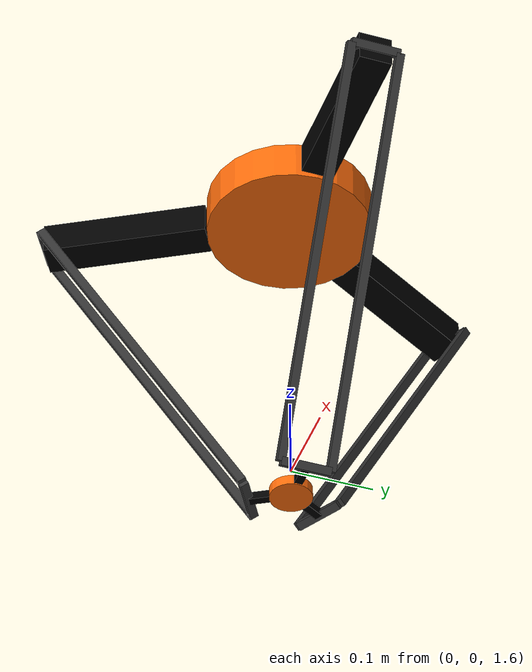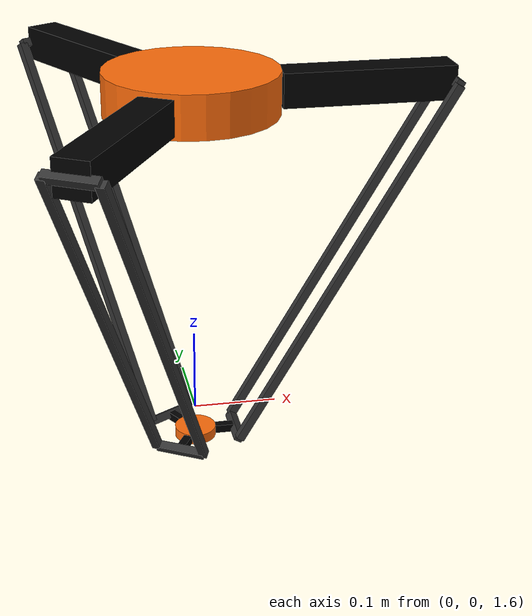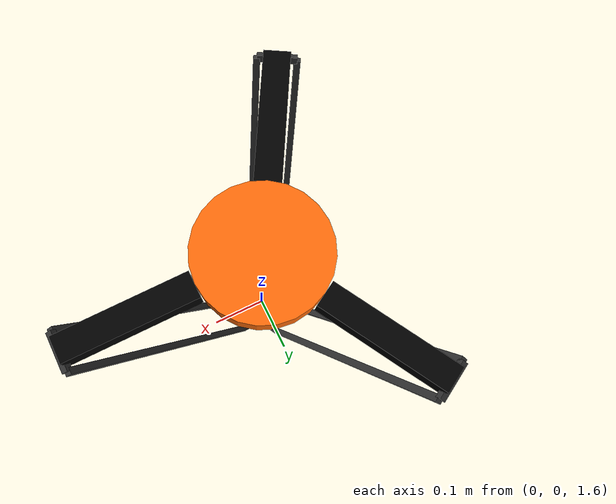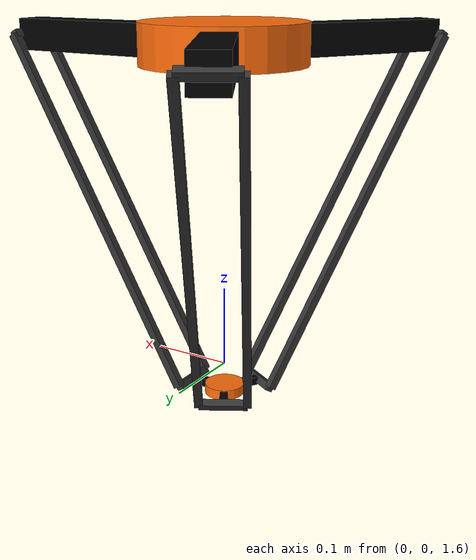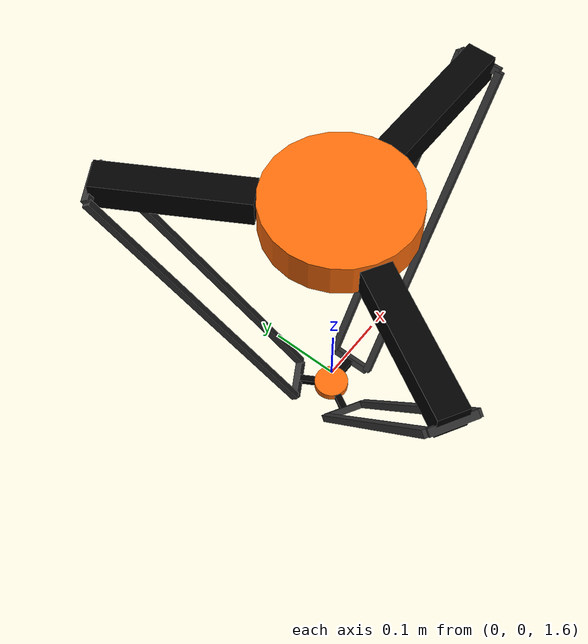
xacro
<?xml version="1.0"?>
<!-- Revolute-Revolute Manipulator -->
<robot name="delta_test" xmlns:xacro="http://www.ros.org/wiki/xacro">

  <!-- Constants for robot dimensions -->
  <xacro:property name="PI" value="3.1415926535897931"/>
  <xacro:property name="width" value="0.05" /> <!-- Square dimensions (widthxwidth) of beams -->
  <xacro:property name="height1" value="0.05" /> <!-- base and end links -->

  <xacro:include filename="$(find simple_delta_robot_description)/urdf/delta_arm.xacro" />
  <xacro:include filename="$(find simple_delta_robot_description)/urdf/delta_robot.gazebo.xacro" />

  <!-- Used for fixing robot to Gazebo 'base_link' -->
  <link name="world"/>

  <joint name="fixed" type="fixed">
    <parent link="world"/>
    <child link="base_link"/>
    <origin xyz="0 0 2" rpy="0 0 0"/>
  </joint>

  <link name="base_link">
    <collision>
      <origin xyz="0 0 0" rpy="0 0 0"/>
      <geometry>
	      <cylinder length="${height1}" radius="${height1*2}"/>
      </geometry>
    </collision>
    <visual>
      <origin xyz="0 0 0" rpy="0 0 0"/>
      <geometry>
	      <cylinder length="${height1}" radius="${height1*2}"/>
      </geometry>
      <material name="orange">
        <color rgba="${255/255} ${108/255} ${10/255} 1.0"/>
      </material>
    </visual>
    <inertial>
      <origin xyz="0 0 0" rpy="0 0 0"/>
      <mass value="1"/>
      <inertia
	      ixx="0.1" ixy="0.0" ixz="0.0"
	      iyy="0.1" iyz="0.0"
	      izz="0.1"/>
    </inertial>
  </link>

  <xacro:delta_arm prefix="front_"/>

  <joint name="front_delta_arm_joint" type="revolute">
    <parent link="base_link"/>
    <child link="front_upper_link"/>
    <origin xyz="0.1 0 0" rpy="0 0 0"/>
    <axis xyz="0 1 0"/>
    <dynamics damping="0.7"/>
    <limit lower="${-60*PI/180}" upper="${60*PI/180}" effort="6" velocity="8"/>
  </joint>

  <xacro:delta_arm prefix="right_"/>

  <joint name="right_delta_arm_joint" type="revolute">
    <parent link="base_link"/>
    <child link="right_upper_link"/>
    <origin xyz="-0.05 -0.0866 0" rpy="0 0 ${-120*PI/180}"/>
    <axis xyz="0 1 0"/>
    <dynamics damping="0.7"/>
    <limit lower="${-60*PI/180}" upper="${60*PI/180}" effort="6" velocity="8"/>
  </joint>

  <xacro:delta_arm prefix="left_"/>

  <joint name="left_delta_arm_joint" type="revolute">
    <parent link="base_link"/>
    <child link="left_upper_link"/>
    <origin xyz="-0.05 0.0866 0" rpy="0 0 ${120*PI/180}"/>
    <axis xyz="0 1 0"/>
    <dynamics damping="0.7"/>
    <limit lower="${-60*PI/180}" upper="${60*PI/180}" effort="6" velocity="8"/>
  </joint>

  <link name="end_link">
    <collision>
      <origin xyz="0 0 0" rpy="0 0 0"/>
      <geometry>
	      <cylinder length="${height1/4}" radius="${height1/2}"/>
      </geometry>
    </collision>
    <visual>
      <origin xyz="0 0 0" rpy="0 0 0"/>
      <geometry>
	      <cylinder length="${height1/4}" radius="${height1/2}"/>
      </geometry>
      <material name="orange">
        <color rgba="${255/255} ${108/255} ${10/255} 1.0"/>
      </material>
    </visual>
    <inertial>
      <origin xyz="0 0 0" rpy="0 0 0"/>
      <mass value="0.1"/>
      <inertia
	      ixx="0.001" ixy="0.0" ixz="0.0"
	      iyy="0.001" iyz="0.0"
	      izz="0.001"/>
    </inertial>
  </link>

  <joint name="front_end_joint" type="fixed">
    <parent link="front_lower_end_link"/>
    <child link="end_link"/>
    <origin xyz="-0.05 0 0" rpy="0 0 0"/>
  </joint>

  <link name="right_end_virtual_link">
    <inertial>
      <origin xyz="0 0 0" rpy="0 0 0"/>
      <mass value="0.001"/>
      <inertia
        ixx="0.0001" ixy="0.0" ixz="0.0"
        iyy="0.0001" iyz="0.0"
        izz="0.0001"/>
    </inertial>
  </link>

  <joint name="right_end_virtual_joint" type="fixed">
    <parent link="end_link"/>
    <child link="right_end_virtual_link"/>
    <origin xyz="-0.025 -0.0433 0" rpy="0 0 ${-120*PI/180}"/>
  </joint>

  <link name="left_end_virtual_link">
    <inertial>
      <origin xyz="0 0 0" rpy="0 0 0"/>
      <mass value="0.001"/>
      <inertia
        ixx="0.0001" ixy="0.0" ixz="0.0"
        iyy="0.0001" iyz="0.0"
        izz="0.0001"/>
    </inertial>
  </link>

  <joint name="left_end_virtual_joint" type="fixed">
    <parent link="end_link"/>
    <child link="left_end_virtual_link"/>
    <origin xyz="-0.025 0.0433 0" rpy="0 0 ${120*PI/180}"/>
  </joint>

  <gazebo>
    <joint name="right_end_joint" type="fixed">
      <parent>right_lower_end_link</parent>
      <child>right_end_virtual_link</child>
      <pose> 0 0 0 0 0 0 </pose>
    </joint>
    <joint name="left_end_joint" type="fixed">
      <parent>left_lower_end_link</parent>
      <child>left_end_virtual_link</child>
      <pose> 0 0 0 0 0 0 </pose>
    </joint>
  </gazebo>
</robot>

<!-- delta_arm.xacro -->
<!-- Revolute-Revolute Manipulator -->
<robot xmlns:xacro="http://www.ros.org/wiki/xacro">

  <!-- Constants for robot dimensions -->
  <xacro:property name="PI" value="3.1415926535897931"/>
  <!-- Important angle when robot at origin point, must be calculated!!!!!! -->
  <xacro:property name="elbow_angle" value="${30*PI/180}" />
  <xacro:property name="wrist_angle" value="-${elbow_angle}" />
  <xacro:property name="mass" value="0.02" /> <!-- arbitrary value for mass -->
  <xacro:property name="upper_width" value="0.04" /> <!-- Square dimensions (widthxwidth) of beams -->
  <xacro:property name="lower_width" value="0.01" />
  <xacro:property name="upper_height" value="0.2" /> <!-- base and end links -->
  <xacro:property name="lower_height1" value="0.06" /> <!-- Upper link -->
  <xacro:property name="lower_height2" value="0.5" /> <!-- lower link -->
  <xacro:property name="lower_height3" value="0.03" /> <!-- Upper link -->

  <xacro:include filename="$(find simple_delta_robot_description)/urdf/delta_arm.gazebo.xacro" />

  <xacro:macro name="delta_arm" params="prefix">
    <link name="${prefix}upper_link">
      <collision>
        <origin xyz="${upper_height/2} 0 0" rpy="0 0 0"/>
        <geometry>
          <box size="${upper_height} ${upper_width} ${upper_width}"/>
        </geometry>
      </collision>
      <visual>
        <origin xyz="${upper_height/2} 0 0" rpy="0 0 0"/>
        <geometry>
          <box size="${upper_height} ${upper_width} ${upper_width}"/>
        </geometry>
        <material name="black">
          <color rgba="0.0 0.0 0.0 1.0"/>
        </material>
      </visual>
      <inertial>
        <origin xyz="0 0 ${upper_height/2}" rpy="0 0 0"/>
        <mass value="${mass}"/>
        <inertia
          ixx="${mass / 12.0 * (upper_width*upper_width + upper_width*upper_width)}" ixy="0.0" ixz="0.0"
          iyy="${mass / 12.0 * (upper_height*upper_height + upper_width*upper_width)}" iyz="0.0"
          izz="${mass / 12.0 * (upper_height*upper_height + upper_width*upper_width)}"/>
      </inertial>
    </link>

    <joint name="${prefix}upper_joint" type="continuous">
      <parent link="${prefix}upper_link"/>
      <child link="${prefix}lower_top_link"/>
      <origin xyz="${upper_height} 0 0" rpy="0 ${elbow_angle} 0"/>
      <axis xyz="0 1 0"/>
    </joint>

    <link name="${prefix}lower_top_link">
      <collision>
        <origin xyz="0 0 0" rpy="0 0 0"/>
        <geometry>
          <box size="${lower_width} ${lower_height1} ${lower_width}"/>
        </geometry>
      </collision>
      <visual>
        <origin xyz="0 0 0" rpy="0 0 0"/>
        <geometry>
          <box size="${lower_width} ${lower_height1} ${lower_width}"/>
        </geometry>
        <material name="grey">
          <color rgba="0.2 0.2 0.2 1.0"/>
        </material>
      </visual>
      <inertial>
        <origin xyz="0 0 0" rpy="0 0 0"/>
        <mass value="${mass}"/>
        <inertia
          ixx="${mass / 12.0 * (lower_width*lower_width + lower_height1*lower_height1)}" ixy="0.0" ixz="0.0"
          iyy="${mass / 12.0 * (lower_width*lower_width + lower_width*lower_width)}" iyz="0.0"
          izz="${mass / 12.0 * (lower_width*lower_width + lower_height1*lower_height1)}"/>
      </inertial>
    </link>

    <joint name="${prefix}lower_top_rignt_joint" type="continuous">
      <parent link="${prefix}lower_top_link"/>
      <child link="${prefix}lower_right_link"/>
      <origin xyz="0 ${-lower_height1/2} 0" rpy="0 0 0"/>
      <axis xyz="1 0 0"/>
    </joint>

    <link name="${prefix}lower_right_link">
      <collision>
        <origin xyz="0 0 ${-lower_height2/2}" rpy="0 0 0"/>
        <geometry>
          <box size="${lower_width} ${lower_width} ${lower_height2}"/>
        </geometry>
      </collision>
      <visual>
        <origin xyz="0 0 ${-lower_height2/2}" rpy="0 0 0"/>
        <geometry>
          <box size="${lower_width} ${lower_width} ${lower_height2}"/>
        </geometry>
        <material name="grey">
          <color rgba="0.2 0.2 0.2 1.0"/>
        </material>
      </visual>
      <inertial>
        <origin xyz="0 0 ${-lower_height2/2}" rpy="0 0 0"/>
        <mass value="${mass}"/>
        <inertia
          ixx="${mass / 12.0 * (lower_width*lower_width + lower_height2*lower_height2)}" ixy="0.0" ixz="0.0"
          iyy="${mass / 12.0 * (lower_height2*lower_height2 + lower_width*lower_width)}" iyz="0.0"
          izz="${mass / 12.0 * (lower_width*lower_width + lower_width*lower_width)}"/>
      </inertial>
    </link>

    <joint name="${prefix}lower_top_left_joint" type="continuous">
      <parent link="${prefix}lower_top_link"/>
      <child link="${prefix}lower_left_link"/>
      <origin xyz="0 ${lower_height1/2} 0" rpy="0 0 0"/>
      <axis xyz="1 0 0"/>
    </joint>

    <link name="${prefix}lower_left_link">
      <collision>
        <origin xyz="0 0 ${-lower_height2/2}" rpy="0 0 0"/>
        <geometry>
          <box size="${lower_width} ${lower_width} ${lower_height2}"/>
        </geometry>
      </collision>
      <visual>
        <origin xyz="0 0 ${-lower_height2/2}" rpy="0 0 0"/>
        <geometry>
          <box size="${lower_width} ${lower_width} ${lower_height2}"/>
        </geometry>
        <material name="grey">
          <color rgba="0.2 0.2 0.2 1.0"/>
        </material>
      </visual>
      <inertial>
        <origin xyz="0 0 ${-lower_height2/2}" rpy="0 0 0"/>
        <mass value="${mass}"/>
        <inertia
          ixx="${mass / 12.0 * (lower_width*lower_width + lower_height2*lower_height2)}" ixy="0.0" ixz="0.0"
          iyy="${mass / 12.0 * (lower_height2*lower_height2 + lower_width*lower_width)}" iyz="0.0"
          izz="${mass / 12.0 * (lower_width*lower_width + lower_width*lower_width)}"/>
      </inertial>
    </link>

    <joint name="${prefix}lower_right_bottom_joint" type="continuous">
      <parent link="${prefix}lower_right_link"/>
      <child link="${prefix}lower_bottom_link"/>
      <origin xyz="0 0 ${-lower_height2}" rpy="0 0 0"/>
      <axis xyz="1 0 0"/>
    </joint>

    <link name="${prefix}lower_bottom_link">
      <collision>
        <origin xyz="0 ${lower_height1/2} 0" rpy="0 0 0"/>
        <geometry>
          <box size="${lower_width} ${lower_height1} ${lower_width}"/>
        </geometry>
      </collision>
      <visual>
        <origin xyz="0 ${lower_height1/2} 0" rpy="0 0 0"/>
        <geometry>
          <box size="${lower_width} ${lower_height1} ${lower_width}"/>
        </geometry>
        <material name="grey">
          <color rgba="0.2 0.2 0.2 1.0"/>
        </material>
      </visual>
      <inertial>
        <origin xyz="0 ${lower_height1/2} 0" rpy="0 0 0"/>
        <mass value="${mass}"/>
        <inertia
          ixx="${mass / 12.0 * (lower_width*lower_width + lower_height1*lower_height1)}" ixy="0.0" ixz="0.0"
          iyy="${mass / 12.0 * (lower_height1*lower_height1 + lower_width*lower_width)}" iyz="0.0"
          izz="${mass / 12.0 * (lower_width*lower_width + lower_width*lower_width)}"/>
      </inertial>
    </link>

    <joint name="${prefix}lower_bottom_end_joint" type="continuous">
      <parent link="${prefix}lower_bottom_link"/>
      <child link="${prefix}lower_end_link"/>
      <origin xyz="0 ${lower_height1/2} 0" rpy="0 ${wrist_angle} 0"/>
      <axis xyz="0 1 0"/>
    </joint>

    <link name="${prefix}lower_end_link">
      <collision>
        <origin xyz="${-lower_height3/2} 0 0" rpy="0 0 0"/>
        <geometry>
          <box size="${lower_height3} ${lower_width} ${lower_width}"/>
        </geometry>
      </collision>
      <visual>
        <origin xyz="${-lower_height3/2} 0 0" rpy="0 0 0"/>
        <geometry>
          <box size="${lower_height3} ${lower_width} ${lower_width}"/>
        </geometry>
        <material name="black">
          <color rgba="0.0 0.0 0.0 1.0"/>
        </material>
      </visual>
      <inertial>
        <origin xyz="${-lower_height3/2} 0 0" rpy="0 0 0"/>
        <mass value="${mass}"/>
        <inertia
          ixx="${mass / 12.0 * (lower_width*lower_width + lower_width*lower_width)}" ixy="0.0" ixz="0.0"
          iyy="${mass / 12.0 * (lower_height3*lower_height3 + lower_width*lower_width)}" iyz="0.0"
          izz="${mass / 12.0 * (lower_height3*lower_height3 + lower_width*lower_width)}"/>
      </inertial>
    </link>

    <joint name="${prefix}lower_bottom_virtual_joint" type="continuous">
      <parent link="${prefix}lower_bottom_link"/>
      <child link="${prefix}lower_bottom_virtual_link"/>
      <origin xyz="0 ${lower_height1} 0" rpy="0 0 0"/>
      <axis xyz="1 0 0"/>
    </joint>

    <link name="${prefix}lower_bottom_virtual_link">
      <inertial>
        <origin xyz="0 0 0" rpy="0 0 0"/>
        <mass value="0.01"/>
        <inertia
          ixx="0.001" ixy="0.0" ixz="0.0"
          iyy="0.001" iyz="0.0"
          izz="0.001"/>
      </inertial>
    </link>

    <joint name="${prefix}lower_left_virtual_joint" type="fixed">
      <parent link="${prefix}lower_left_link"/>
      <child link="${prefix}lower_left_virtual_link"/>
      <origin xyz="0 0 ${-lower_height2}" rpy="0 0 0"/>
    </joint>

    <link name="${prefix}lower_left_virtual_link">
      <inertial>
        <origin xyz="0 0 0" rpy="0 0 0"/>
        <mass value="0.01"/>
        <inertia
          ixx="0.001" ixy="0.0" ixz="0.0"
          iyy="0.001" iyz="0.0"
          izz="0.001"/>
      </inertial>
    </link>

    <gazebo>
      <joint name="${prefix}lower_left_bottom_joint" type="fixed">
        <parent>${prefix}lower_left_virtual_link</parent>
        <child>${prefix}lower_bottom_virtual_link</child>
        <pose> 0 0 0 0 0 0 </pose>
      </joint>
    </gazebo>

    <xacro:delta_arm_gazebo prefix="${prefix}"/>
  </xacro:macro>
</robot>

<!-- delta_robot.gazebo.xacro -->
<robot xmlns:xacro="http://www.ros.org/wiki/xacro">
  <physics type='ode'>
    <max_step_size>0.001</max_step_size>
    <real_time_factor>0.1</real_time_factor>
    <real_time_update_rate>1000</real_time_update_rate>
    <gravity>0 0 -9.8</gravity>
  </physics>

  <gazebo>
    <plugin name="gazebo_ros_control" filename="libgazebo_ros_control.so">
      <robotNamespace></robotNamespace>
      <robotSimType>gazebo_ros_control/DefaultRobotHWSim</robotSimType>
      <legacyModeNS>true</legacyModeNS>
    </plugin>
  </gazebo>

  <gazebo reference="base_link">
    <material>Gazebo/Orange</material>
    <selfCollide>false</selfCollide>
  </gazebo>

  <gazebo reference="end_link">
    <material>Gazebo/Orange</material>
    <selfCollide>false</selfCollide>
  </gazebo>

  <transmission name="front_delta_arm_joint_trans">
    <type>transmission_interface/SimpleTransmission</type>
    <joint name="front_delta_arm_joint">
      <hardwareInterface>hardware_interface/EffortJointInterface</hardwareInterface>
    </joint>
    <actuator name="front_delta_arm_joint_motor">
      <hardwareInterface>hardware_interface/EffortJointInterface</hardwareInterface>
      <mechanicalReduction>1</mechanicalReduction>
    </actuator>
  </transmission>
  <transmission name="right_delta_arm_joint_trans">
    <type>transmission_interface/SimpleTransmission</type>
    <joint name="right_delta_arm_joint">
      <hardwareInterface>hardware_interface/EffortJointInterface</hardwareInterface>
    </joint>
    <actuator name="right_delta_arm_joint_motor">
      <hardwareInterface>hardware_interface/EffortJointInterface</hardwareInterface>
      <mechanicalReduction>1</mechanicalReduction>
    </actuator>
  </transmission>
  <transmission name="left_delta_arm_joint_trans">
    <type>transmission_interface/SimpleTransmission</type>
    <joint name="left_delta_arm_joint">
      <hardwareInterface>hardware_interface/EffortJointInterface</hardwareInterface>
    </joint>
    <actuator name="left_delta_arm_joint_motor">
      <hardwareInterface>hardware_interface/EffortJointInterface</hardwareInterface>
      <mechanicalReduction>1</mechanicalReduction>
    </actuator>
  </transmission>
</robot>
